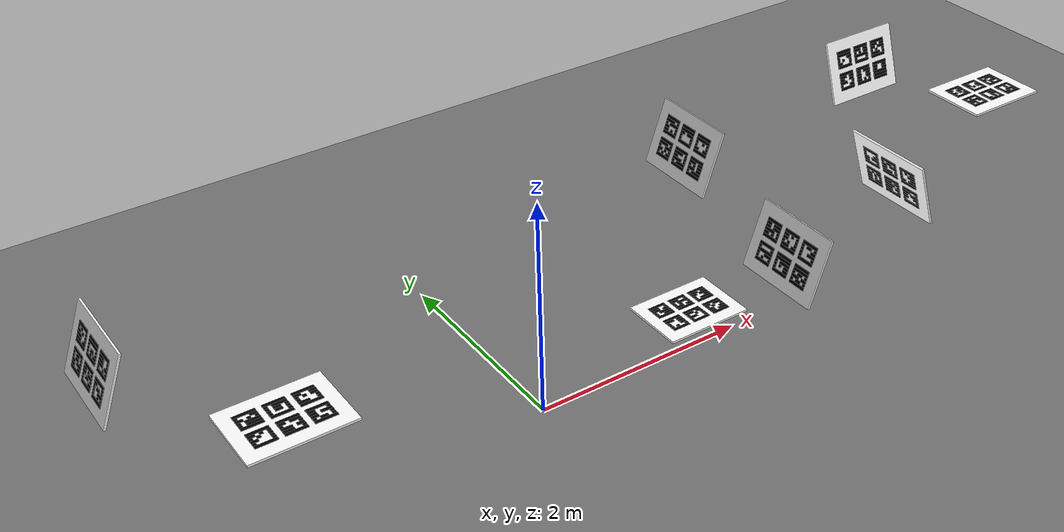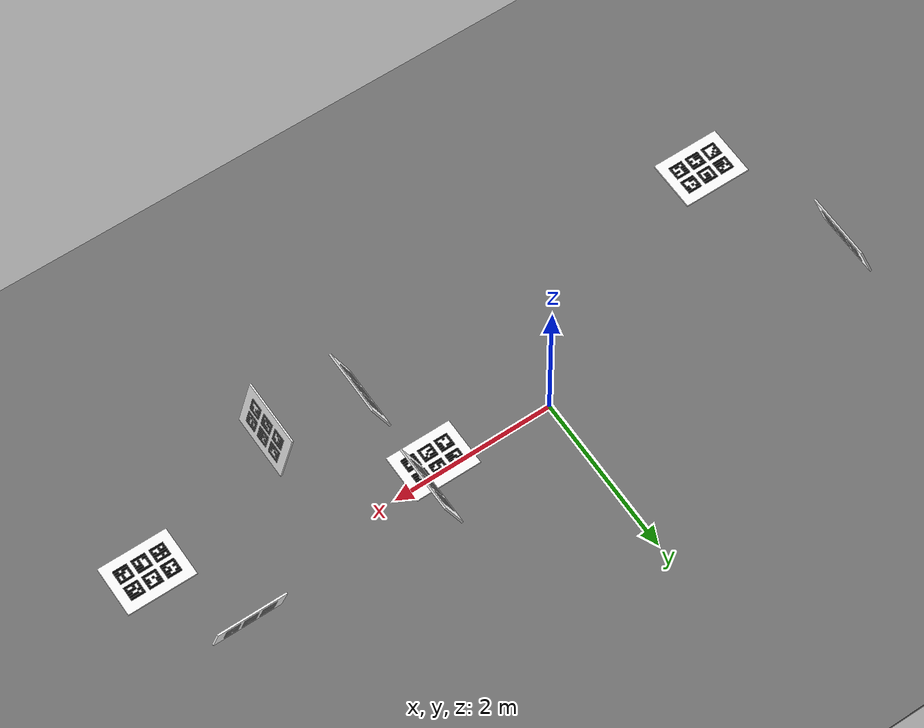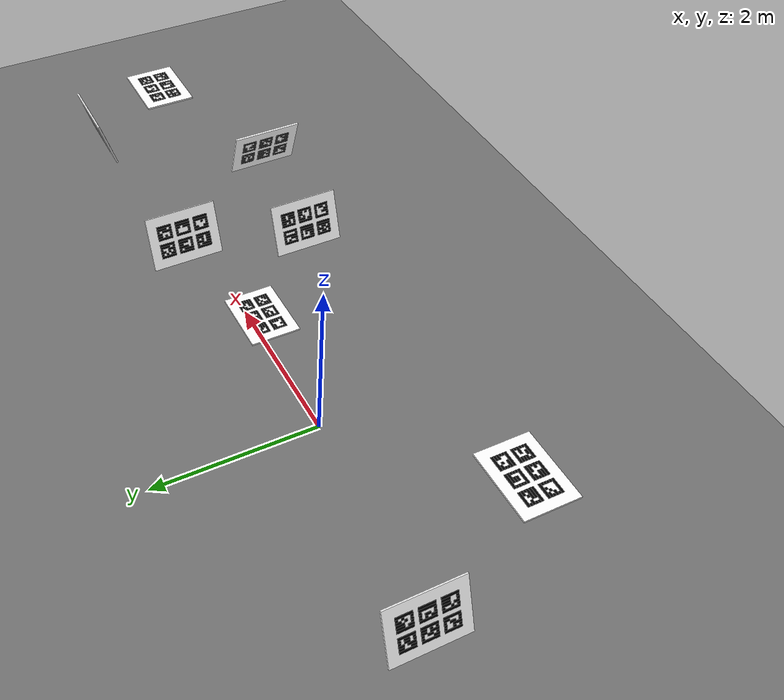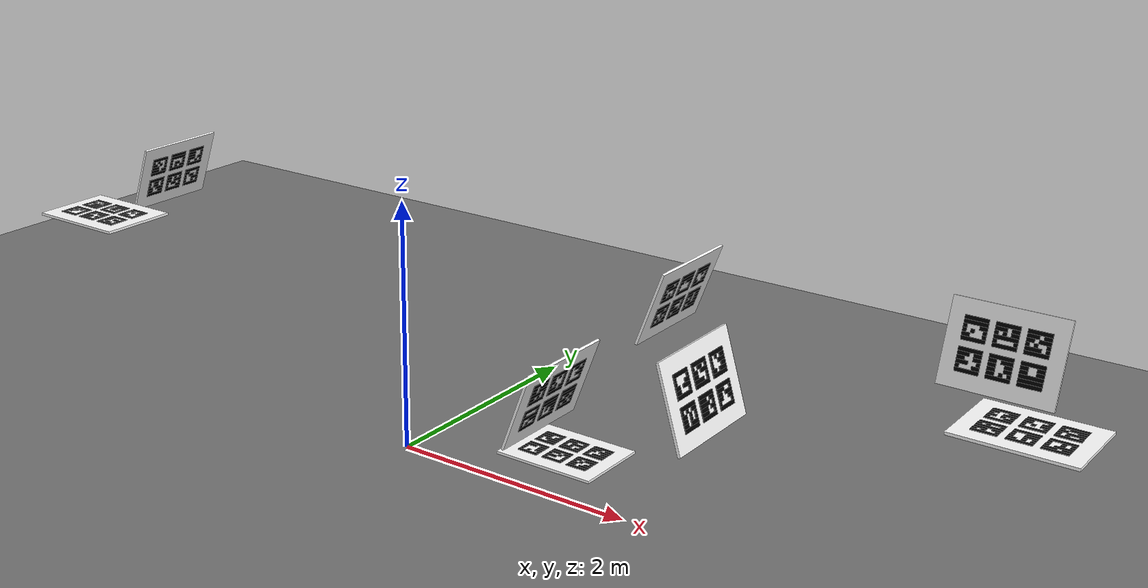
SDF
<sdf version="1.7">
 <world name="bus_multi_aruco_static_stations">
  <scene>
   <ambient>0.90 0.90 0.90 1</ambient>
   <background>0.70 0.70 0.70 1</background>
   <shadows>false</shadows>
  </scene>
  <plugin filename="ignition-gazebo-physics-system" name="ignition::gazebo::systems::Physics"/>
  <plugin filename="ignition-gazebo-user-commands-system" name="ignition::gazebo::systems::UserCommands"/>
  <plugin filename="ignition-gazebo-scene-broadcaster-system" name="ignition::gazebo::systems::SceneBroadcaster"/>
  <plugin filename="ignition-gazebo-sensors-system" name="ignition::gazebo::systems::Sensors">
   <render_engine>ogre2</render_engine>
  </plugin>
  <light name="sun" type="directional">
   <visualize>false</visualize>
   <pose>0 0 10 0 0 0</pose>
   <diffuse>1 1 1 1</diffuse>
   <specular>0.3 0.3 0.3 1</specular>
   <direction>-0.5 0.2 -1</direction>
  </light>
  <model name="ground_plane">
   <static>true</static>
   <link name="link">
    <visual name="visual">
     <geometry><box><size>30 10 0.05</size></box></geometry>
     <material><ambient>0.45 0.45 0.45 1</ambient><diffuse>0.45 0.45 0.45 1</diffuse></material>
    </visual>
   </link>
   <pose>0 0 -0.025 0 0 0</pose>
  </model>
  <include>
   <uri>model://aruco_station_F1_ids_30_35</uri>
   <name>aruco_board_F1_front_mid_far_seat_leaned</name>
   <pose>1.89 -0.75 1.22 0 0.35 0</pose>
  </include>
  <include>
   <uri>model://aruco_station_F2_ids_36_41</uri>
   <name>aruco_board_F2_front_mid_high_left_seat</name>
   <pose>1.97 0.71 1.50 0 0.35 0</pose>
  </include>
  <include>
   <uri>model://aruco_station_F3_ids_00_05</uri>
   <name>aruco_board_F3_front_near_left_seat</name>
   <pose>-3.25 0.71 1.50 0 0.35 0</pose>
  </include>
  <include>
   <uri>model://aruco_station_F4_ids_06_11</uri>
   <name>aruco_board_F4_front_right_table_or_box</name>
   <pose>-2.46 -0.75 1.62 1.57079633 1.57079633 0</pose>
  </include>
  <include>
   <uri>model://aruco_station_R1_ids_24_29</uri>
   <name>aruco_board_R1_rear_left_seat_leaned_occluded</name>
   <pose>3.02 -0.75 1.55 0 0.3 3.14159265</pose>
  </include>
  <include>
   <uri>model://aruco_station_R2_ids_18_23</uri>
   <name>aruco_board_R2_rear_table_flat</name>
   <pose>4.83 -0.09 1.52 1.57079633 1.57079633 3.14159265</pose>
  </include>
  <include>
   <uri>model://aruco_station_R3_ids_12_17</uri>
   <name>aruco_board_R3_rear_right_seat_angled</name>
   <pose>4.27 0.93 1.55 0 0.3 1.57079633</pose>
  </include>
  <include>
   <uri>model://aruco_station_G_ids_42_47</uri>
   <name>aruco_board_G_floor_mid</name>
   <pose>1.50 0.0 0.39 1.57079633 1.57079633 3.14159265</pose>
  </include>
  <model name="front_static_camera">
   <static>true</static>
   <pose>-3.90 0.0 2.85 0 0.69813170 0</pose>
   <link name="link">
    <sensor name="front_static_camera" type="camera">
     <visualize>false</visualize>
     <always_on>true</always_on>
     <update_rate>15</update_rate>
     <topic>/front_static_camera/image</topic>
     <camera>
      <horizontal_fov>1.57079633</horizontal_fov>
      <image><width>640</width><height>480</height><format>R8G8B8</format></image>
      <clip><near>0.05</near><far>30</far></clip>
     </camera>
    </sensor>
   </link>
  </model>
  <model name="rear_static_camera">
   <static>true</static>
   <pose>5.70 0.0 2.85 0 0.69813170 3.14159265</pose>
   <link name="link">
    <sensor name="rear_static_camera" type="camera">
     <visualize>false</visualize>
     <always_on>true</always_on>
     <update_rate>15</update_rate>
     <topic>/rear_static_camera/image</topic>
     <camera>
      <horizontal_fov>1.57079633</horizontal_fov>
      <image><width>640</width><height>480</height><format>R8G8B8</format></image>
      <clip><near>0.05</near><far>30</far></clip>
     </camera>
    </sensor>
   </link>
  </model>
  <model name="moving_calib_camera">
   <static>true</static>
   <pose>4.20 0.0 1.75 0 0 3.14159265</pose>
   <link name="link">
    <sensor name="moving_calib_camera" type="camera">
     <always_on>true</always_on>
     <update_rate>30</update_rate>
     <visualize>false</visualize>
     <topic>/moving_calib_camera/image</topic>
     <camera>
      <horizontal_fov>1.57079633</horizontal_fov>
      <image><width>640</width><height>480</height><format>R8G8B8</format></image>
      <clip><near>0.05</near><far>100</far></clip>
     </camera>
    </sensor>
   </link>
  </model>
 </world>
</sdf>
